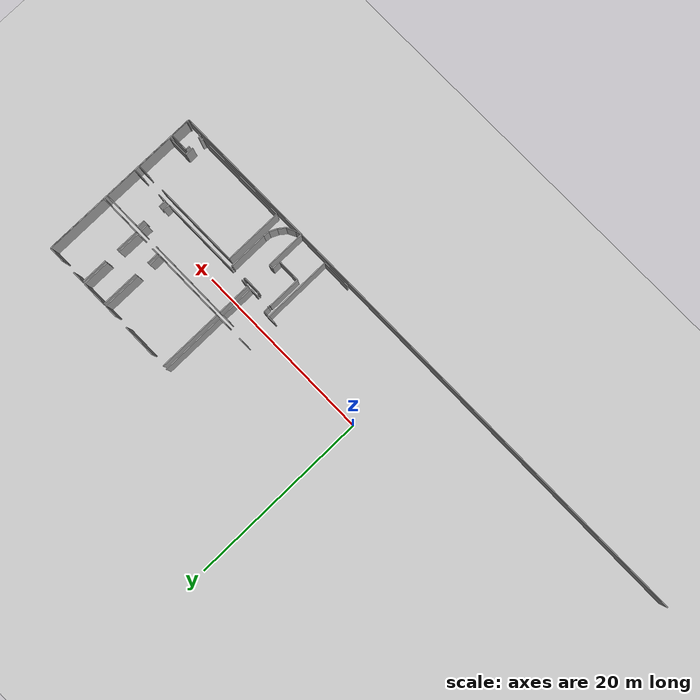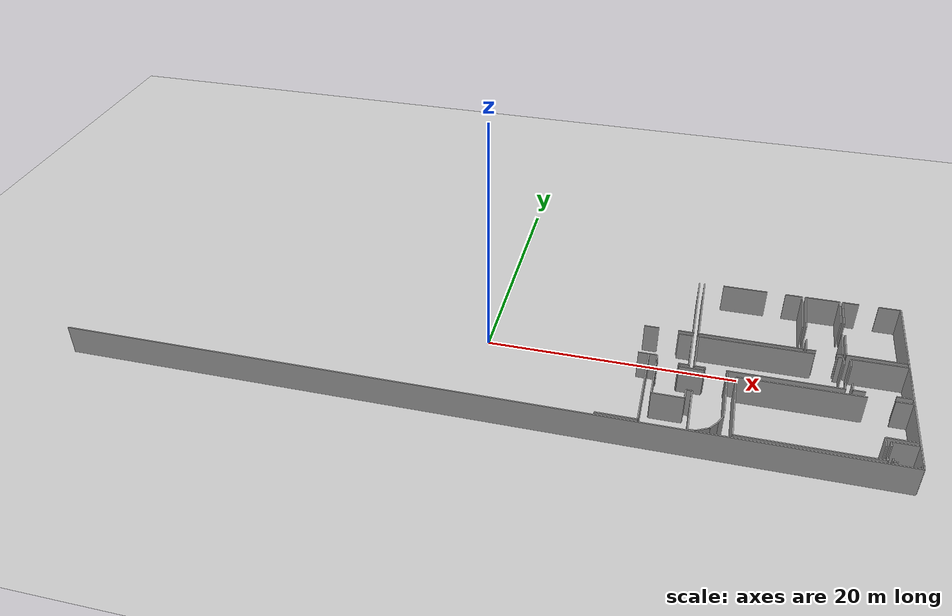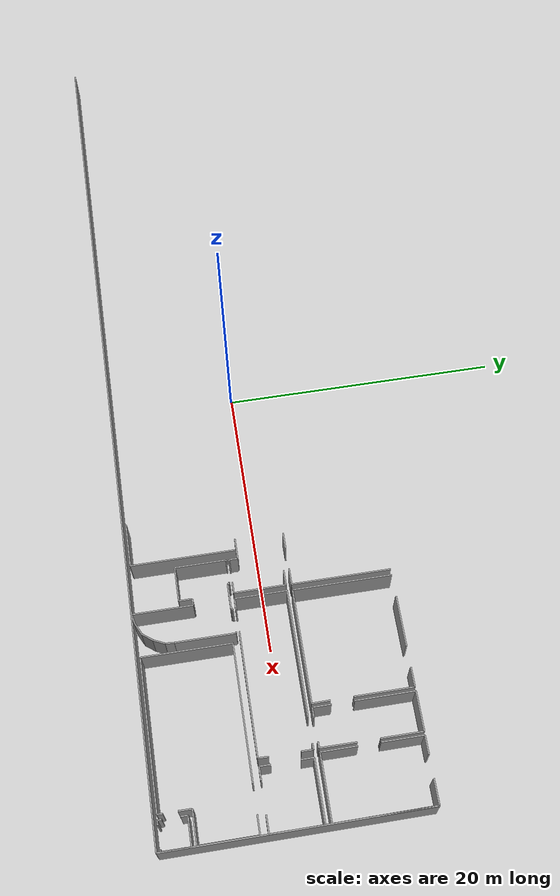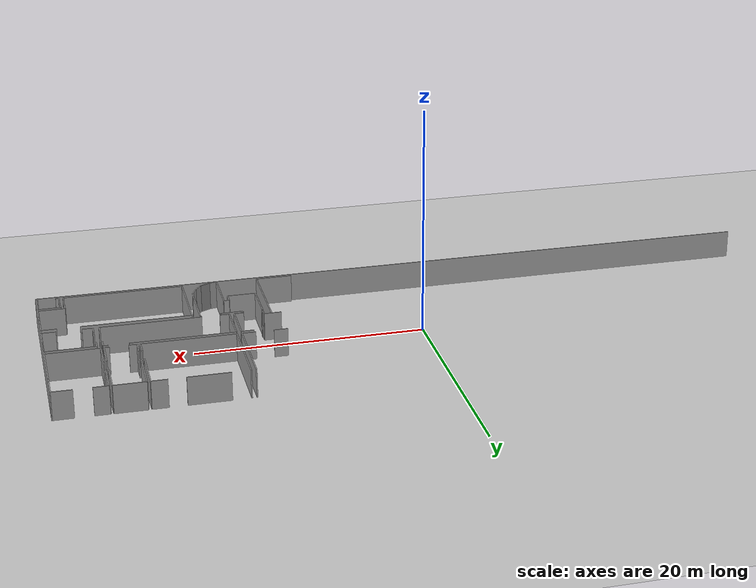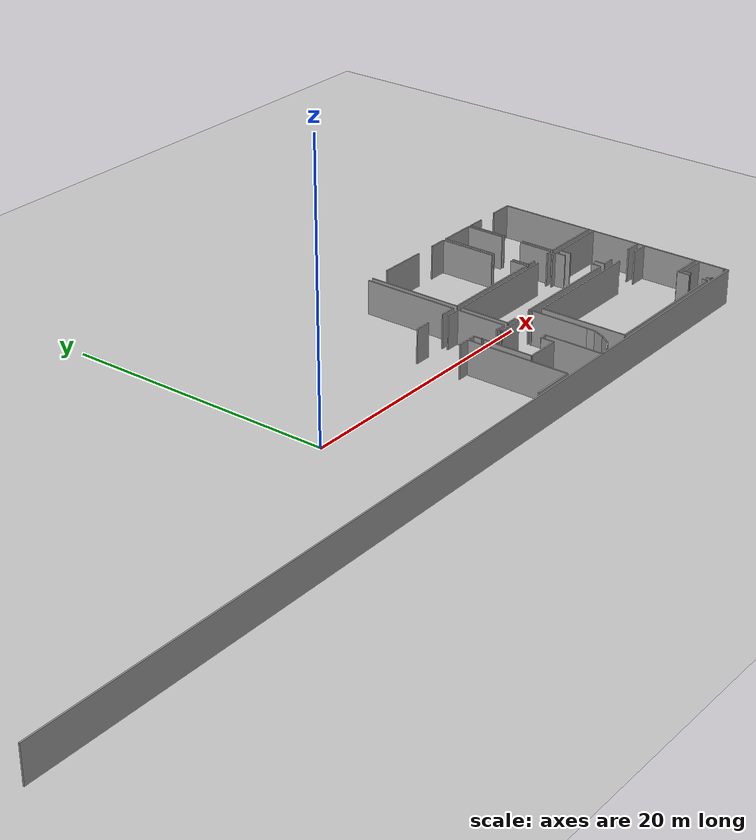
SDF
<sdf version="1.6">
 <world name="default">
  <model name="ground_plane">
   <static>1</static>
   <link name="link">
    <collision name="collision">
     <geometry><plane><normal>0 0 1</normal><size>100 100</size></plane></geometry>
     <surface><friction><ode><mu>100</mu><mu2>50</mu2></ode></friction></surface>
    </collision>
    <visual name="visual">
     <cast_shadows>0</cast_shadows>
     <geometry><plane><normal>0 0 1</normal><size>100 100</size></plane></geometry>
     <material>
      <script><uri>file://media/materials/scripts/gazebo.material</uri><name>Gazebo/Grey</name></script>
     </material>
    </visual>
   </link>
  </model>
  <model name="0510034868_A-40">
   <static>1</static>
   <link name="Wall_56">
    <collision name="Wall_56_Collision">
     <geometry><box><size>0.823649622066 0.1 2.5</size></box></geometry>
     <pose>0.411824811033 0 1.25 0 0 0</pose>
    </collision>
    <visual name="Wall_56_Visual">
     <pose>0.411824811033 0 1.25 0 0 0</pose>
     <geometry><box><size>0.823649622066 0.1 2.5</size></box></geometry>
     <material>
      <script><uri>file://media/materials/scripts/gazebo.material</uri><name>Gazebo/Grey</name></script>
      <ambient>1 1 1 1</ambient>
     </material>
    </visual>
    <pose>48.7089301694 -11.0882354808 0 0 0 3.14159265359</pose>
   </link>
   <link name="Wall_57">
    <collision name="Wall_57_Collision">
     <geometry><box><size>0.111317725158 0.1 2.5</size></box></geometry>
     <pose>0.0556588625791 0 1.25 0 0 0</pose>
    </collision>
    <visual name="Wall_57_Visual">
     <pose>0.0556588625791 0 1.25 0 0 0</pose>
     <geometry><box><size>0.111317725158 0.1 2.5</size></box></geometry>
     <material>
      <script><uri>file://media/materials/scripts/gazebo.material</uri><name>Gazebo/Grey</name></script>
      <ambient>1 1 1 1</ambient>
     </material>
    </visual>
    <pose>46.334448203 -11.0882354808 0 0 0 3.14159265359</pose>
   </link>
   <link name="Wall_58">
    <collision name="Wall_58_Collision">
     <geometry><box><size>0.614214905405 0.1 2.5</size></box></geometry>
     <pose>0.307107452703 0 1.25 0 0 0</pose>
    </collision>
    <visual name="Wall_58_Visual">
     <pose>0.307107452703 0 1.25 0 0 0</pose>
     <geometry><box><size>0.614214905405 0.1 2.5</size></box></geometry>
     <material>
      <script><uri>file://media/materials/scripts/gazebo.material</uri><name>Gazebo/Grey</name></script>
      <ambient>1 1 1 1</ambient>
     </material>
    </visual>
    <pose>46.2231304778 -11.0882354808 0 0 0 1.57079632679</pose>
   </link>
   <link name="Wall_59">
    <collision name="Wall_59_Collision">
     <geometry><box><size>1.48774806908 0.1 2.5</size></box></geometry>
     <pose>0.743874034538 0 1.25 0 0 0</pose>
    </collision>
    <visual name="Wall_59_Visual">
     <pose>0.743874034538 0 1.25 0 0 0</pose>
     <geometry><box><size>1.48774806908 0.1 2.5</size></box></geometry>
     <material>
      <script><uri>file://media/materials/scripts/gazebo.material</uri><name>Gazebo/Grey</name></script>
      <ambient>1 1 1 1</ambient>
     </material>
    </visual>
    <pose>46.2231304778 -10.4740205754 0 0 0 3.14159265359</pose>
   </link>
   <link name="Wall_80">
    <collision name="Wall_80_Collision">
     <geometry><box><size>1.08169857902 0.1 2.5</size></box></geometry>
     <pose>0.540849289509 0 1.25 0 0 0</pose>
    </collision>
    <visual name="Wall_80_Visual">
     <pose>0.540849289509 0 1.25 0 0 0</pose>
     <geometry><box><size>1.08169857902 0.1 2.5</size></box></geometry>
     <material>
      <script><uri>file://media/materials/scripts/gazebo.material</uri><name>Gazebo/Grey</name></script>
      <ambient>1 1 1 1</ambient>
     </material>
    </visual>
    <pose>47.6186003414 -7.42388952001 0 0 0 0.0</pose>
   </link>
   <link name="Wall_81">
    <collision name="Wall_81_Collision">
     <geometry><box><size>3.66435612607 0.1 2.5</size></box></geometry>
     <pose>1.83217806303 0 1.25 0 0 0</pose>
    </collision>
    <visual name="Wall_81_Visual">
     <pose>1.83217806303 0 1.25 0 0 0</pose>
     <geometry><box><size>3.66435612607 0.1 2.5</size></box></geometry>
     <material>
      <script><uri>file://media/materials/scripts/gazebo.material</uri><name>Gazebo/Grey</name></script>
      <ambient>1 1 1 1</ambient>
     </material>
    </visual>
    <pose>48.7002989205 -7.42388952001 0 0 0 -1.56844086335</pose>
   </link>
   <link name="Wall_119">
    <collision name="Wall_119_Collision">
     <geometry><box><size>1.18032329104 0.1 2.5</size></box></geometry>
     <pose>0.590161645522 0 1.25 0 0 0</pose>
    </collision>
    <visual name="Wall_119_Visual">
     <pose>0.590161645522 0 1.25 0 0 0</pose>
     <geometry><box><size>1.18032329104 0.1 2.5</size></box></geometry>
     <material>
      <script><uri>file://media/materials/scripts/gazebo.material</uri><name>Gazebo/Grey</name></script>
      <ambient>1 1 1 1</ambient>
     </material>
    </visual>
    <pose>48.7113418419 -7.03078690335 0 0 0 3.14159265359</pose>
   </link>
   <link name="Wall_120">
    <collision name="Wall_120_Collision">
     <geometry><box><size>1.17676924737 0.1 2.5</size></box></geometry>
     <pose>0.588384623684 0 1.25 0 0 0</pose>
    </collision>
    <visual name="Wall_120_Visual">
     <pose>0.588384623684 0 1.25 0 0 0</pose>
     <geometry><box><size>1.17676924737 0.1 2.5</size></box></geometry>
     <material>
      <script><uri>file://media/materials/scripts/gazebo.material</uri><name>Gazebo/Grey</name></script>
      <ambient>1 1 1 1</ambient>
     </material>
    </visual>
    <pose>45.9969409838 -7.03078690335 0 0 0 3.14159265359</pose>
   </link>
   <link name="Wall_123">
    <collision name="Wall_123_Collision">
     <geometry><box><size>7.02038173532 0.1 2.5</size></box></geometry>
     <pose>3.51019086766 0 1.25 0 0 0</pose>
    </collision>
    <visual name="Wall_123_Visual">
     <pose>3.51019086766 0 1.25 0 0 0</pose>
     <geometry><box><size>7.02038173532 0.1 2.5</size></box></geometry>
     <material>
      <script><uri>file://media/materials/scripts/gazebo.material</uri><name>Gazebo/Grey</name></script>
      <ambient>1 1 1 1</ambient>
     </material>
    </visual>
    <pose>48.7047414751 -0.0104082707674 0 0 0 -1.56985615459</pose>
   </link>
   <link name="Wall_159">
    <collision name="Wall_159_Collision">
     <geometry><box><size>3.14558251411 0.1 2.5</size></box></geometry>
     <pose>1.57279125705 0 1.25 0 0 0</pose>
    </collision>
    <visual name="Wall_159_Visual">
     <pose>1.57279125705 0 1.25 0 0 0</pose>
     <geometry><box><size>3.14558251411 0.1 2.5</size></box></geometry>
     <material>
      <script><uri>file://media/materials/scripts/gazebo.material</uri><name>Gazebo/Grey</name></script>
      <ambient>1 1 1 1</ambient>
     </material>
    </visual>
    <pose>45.5879721008 -17.9956462965 0 0 0 3.14159265359</pose>
   </link>
   <link name="Wall_163">
    <collision name="Wall_163_Collision">
     <geometry><box><size>7.46325901643 0.1 2.5</size></box></geometry>
     <pose>3.73162950822 0 1.25 0 0 0</pose>
    </collision>
    <visual name="Wall_163_Visual">
     <pose>3.73162950822 0 1.25 0 0 0</pose>
     <geometry><box><size>7.46325901643 0.1 2.5</size></box></geometry>
     <material>
      <script><uri>file://media/materials/scripts/gazebo.material</uri><name>Gazebo/Grey</name></script>
      <ambient>1 1 1 1</ambient>
     </material>
    </visual>
    <pose>45.5702018824 -10.5324084358 0 0 0 -1.56841529793</pose>
   </link>
   <link name="Wall_164">
    <collision name="Wall_164_Collision">
     <geometry><box><size>4.260029067 0.1 2.5</size></box></geometry>
     <pose>2.1300145335 0 1.25 0 0 0</pose>
    </collision>
    <visual name="Wall_164_Visual">
     <pose>2.1300145335 0 1.25 0 0 0</pose>
     <geometry><box><size>4.260029067 0.1 2.5</size></box></geometry>
     <material>
      <script><uri>file://media/materials/scripts/gazebo.material</uri><name>Gazebo/Grey</name></script>
      <ambient>1 1 1 1</ambient>
     </material>
    </visual>
    <pose>49.1522971181 -18.2497604194 0 0 0 1.57079632679</pose>
   </link>
   <link name="Wall_165">
    <collision name="Wall_165_Collision">
     <geometry><box><size>0.467991394137 0.1 2.5</size></box></geometry>
     <pose>0.233995697069 0 1.25 0 0 0</pose>
    </collision>
    <visual name="Wall_165_Visual">
     <pose>0.233995697069 0 1.25 0 0 0</pose>
     <geometry><box><size>0.467991394137 0.1 2.5</size></box></geometry>
     <material>
      <script><uri>file://media/materials/scripts/gazebo.material</uri><name>Gazebo/Grey</name></script>
      <ambient>1 1 1 1</ambient>
     </material>
    </visual>
    <pose>49.1522971181 -13.9897313524 0 0 0 3.14159265359</pose>
   </link>
   <link name="Wall_166">
    <collision name="Wall_166_Collision">
     <geometry><box><size>0.943090875628 0.1 2.5</size></box></geometry>
     <pose>0.471545437814 0 1.25 0 0 0</pose>
    </collision>
    <visual name="Wall_166_Visual">
     <pose>0.471545437814 0 1.25 0 0 0</pose>
     <geometry><box><size>0.943090875628 0.1 2.5</size></box></geometry>
     <material>
      <script><uri>file://media/materials/scripts/gazebo.material</uri><name>Gazebo/Grey</name></script>
      <ambient>1 1 1 1</ambient>
     </material>
    </visual>
    <pose>48.6843057239 -13.9897313524 0 0 0 -1.57079632679</pose>
   </link>
   <link name="Wall_167">
    <collision name="Wall_167_Collision">
     <geometry><box><size>2.47031421554 0.1 2.5</size></box></geometry>
     <pose>1.23515710777 0 1.25 0 0 0</pose>
    </collision>
    <visual name="Wall_167_Visual">
     <pose>1.23515710777 0 1.25 0 0 0</pose>
     <geometry><box><size>2.47031421554 0.1 2.5</size></box></geometry>
     <material>
      <script><uri>file://media/materials/scripts/gazebo.material</uri><name>Gazebo/Grey</name></script>
      <ambient>1 1 1 1</ambient>
     </material>
    </visual>
    <pose>48.6843057239 -14.932822228 0 0 0 3.14159265359</pose>
   </link>
   <link name="Wall_168">
    <collision name="Wall_168_Collision">
     <geometry><box><size>3.63210570741 0.1 2.5</size></box></geometry>
     <pose>1.81605285371 0 1.25 0 0 0</pose>
    </collision>
    <visual name="Wall_168_Visual">
     <pose>1.81605285371 0 1.25 0 0 0</pose>
     <geometry><box><size>3.63210570741 0.1 2.5</size></box></geometry>
     <material>
      <script><uri>file://media/materials/scripts/gazebo.material</uri><name>Gazebo/Grey</name></script>
      <ambient>1 1 1 1</ambient>
     </material>
    </visual>
    <pose>46.2139915084 -14.932822228 0 0 0 1.57079632679</pose>
   </link>
   <link name="Wall_169">
    <collision name="Wall_169_Collision">
     <geometry><box><size>0.109921493714 0.1 2.5</size></box></geometry>
     <pose>0.0549607468569 0 1.25 0 0 0</pose>
    </collision>
    <visual name="Wall_169_Visual">
     <pose>0.0549607468569 0 1.25 0 0 0</pose>
     <geometry><box><size>0.109921493714 0.1 2.5</size></box></geometry>
     <material>
      <script><uri>file://media/materials/scripts/gazebo.material</uri><name>Gazebo/Grey</name></script>
      <ambient>1 1 1 1</ambient>
     </material>
    </visual>
    <pose>46.2139915084 -11.3007165206 0 0 0 0.0</pose>
   </link>
   <link name="Wall_170">
    <collision name="Wall_170_Collision">
     <geometry><box><size>0.109667633451 0.1 2.5</size></box></geometry>
     <pose>0.0548338167256 0 1.25 0 0 0</pose>
    </collision>
    <visual name="Wall_170_Visual">
     <pose>0.0548338167256 0 1.25 0 0 0</pose>
     <geometry><box><size>0.109667633451 0.1 2.5</size></box></geometry>
     <material>
      <script><uri>file://media/materials/scripts/gazebo.material</uri><name>Gazebo/Grey</name></script>
      <ambient>1 1 1 1</ambient>
     </material>
    </visual>
    <pose>47.8605291717 -11.3007165206 0 0 0 0.0</pose>
   </link>
   <link name="Wall_171">
    <collision name="Wall_171_Collision">
     <geometry><box><size>0.133657428269 0.1 2.5</size></box></geometry>
     <pose>0.0668287141343 0 1.25 0 0 0</pose>
    </collision>
    <visual name="Wall_171_Visual">
     <pose>0.0668287141343 0 1.25 0 0 0</pose>
     <geometry><box><size>0.133657428269 0.1 2.5</size></box></geometry>
     <material>
      <script><uri>file://media/materials/scripts/gazebo.material</uri><name>Gazebo/Grey</name></script>
      <ambient>1 1 1 1</ambient>
     </material>
    </visual>
    <pose>47.9701968052 -11.3007165206 0 0 0 -1.57079632679</pose>
   </link>
   <link name="Wall_172">
    <collision name="Wall_172_Collision">
     <geometry><box><size>1.87691585167 0.1 2.5</size></box></geometry>
     <pose>0.938457925835 0 1.25 0 0 0</pose>
    </collision>
    <visual name="Wall_172_Visual">
     <pose>0.938457925835 0 1.25 0 0 0</pose>
     <geometry><box><size>1.87691585167 0.1 2.5</size></box></geometry>
     <material>
      <script><uri>file://media/materials/scripts/gazebo.material</uri><name>Gazebo/Grey</name></script>
      <ambient>1 1 1 1</ambient>
     </material>
    </visual>
    <pose>47.9701968052 -11.4343739489 0 0 0 0.0</pose>
   </link>
   <link name="Wall_173">
    <collision name="Wall_173_Collision">
     <geometry><box><size>0.112587026471 0.1 2.5</size></box></geometry>
     <pose>0.0562935132356 0 1.25 0 0 0</pose>
    </collision>
    <visual name="Wall_173_Visual">
     <pose>0.0562935132356 0 1.25 0 0 0</pose>
     <geometry><box><size>0.112587026471 0.1 2.5</size></box></geometry>
     <material>
      <script><uri>file://media/materials/scripts/gazebo.material</uri><name>Gazebo/Grey</name></script>
      <ambient>1 1 1 1</ambient>
     </material>
    </visual>
    <pose>49.8471126568 -11.4343739489 0 0 0 1.57079632679</pose>
   </link>
   <link name="Wall_174">
    <collision name="Wall_174_Collision">
     <geometry><box><size>0.0830123058762 0.1 2.5</size></box></geometry>
     <pose>0.0415061529381 0 1.25 0 0 0</pose>
    </collision>
    <visual name="Wall_174_Visual">
     <pose>0.0415061529381 0 1.25 0 0 0</pose>
     <geometry><box><size>0.0830123058762 0.1 2.5</size></box></geometry>
     <material>
      <script><uri>file://media/materials/scripts/gazebo.material</uri><name>Gazebo/Grey</name></script>
      <ambient>1 1 1 1</ambient>
     </material>
    </visual>
    <pose>49.8471126568 -11.3217869224 0 0 0 0.0</pose>
   </link>
   <link name="Wall_175">
    <collision name="Wall_175_Collision">
     <geometry><box><size>0.115252559229 0.1 2.5</size></box></geometry>
     <pose>0.0576262796144 0 1.25 0 0 0</pose>
    </collision>
    <visual name="Wall_175_Visual">
     <pose>0.0576262796144 0 1.25 0 0 0</pose>
     <geometry><box><size>0.115252559229 0.1 2.5</size></box></geometry>
     <material>
      <script><uri>file://media/materials/scripts/gazebo.material</uri><name>Gazebo/Grey</name></script>
      <ambient>1 1 1 1</ambient>
     </material>
    </visual>
    <pose>51.4784187044 -11.3217869224 0 0 0 0.0</pose>
   </link>
   <link name="Wall_176">
    <collision name="Wall_176_Collision">
     <geometry><box><size>4.24885921544 0.1 2.5</size></box></geometry>
     <pose>2.12442960772 0 1.25 0 0 0</pose>
    </collision>
    <visual name="Wall_176_Visual">
     <pose>2.12442960772 0 1.25 0 0 0</pose>
     <geometry><box><size>4.24885921544 0.1 2.5</size></box></geometry>
     <material>
      <script><uri>file://media/materials/scripts/gazebo.material</uri><name>Gazebo/Grey</name></script>
      <ambient>1 1 1 1</ambient>
     </material>
    </visual>
    <pose>51.5936712637 -11.3217869224 0 0 0 -1.57079632679</pose>
   </link>
   <link name="Wall_177">
    <collision name="Wall_177_Collision">
     <geometry><box><size>0.625623320526 0.1 2.5</size></box></geometry>
     <pose>0.312811660263 0 1.25 0 0 0</pose>
    </collision>
    <visual name="Wall_177_Visual">
     <pose>0.312811660263 0 1.25 0 0 0</pose>
     <geometry><box><size>0.625623320526 0.1 2.5</size></box></geometry>
     <material>
      <script><uri>file://media/materials/scripts/gazebo.material</uri><name>Gazebo/Grey</name></script>
      <ambient>1 1 1 1</ambient>
     </material>
    </visual>
    <pose>51.5936712637 -15.5706461378 0 0 0 -1.64023909296</pose>
   </link>
   <link name="Wall_178">
    <collision name="Wall_178_Collision">
     <geometry><box><size>0.876994264217 0.1 2.5</size></box></geometry>
     <pose>0.438497132108 0 1.25 0 0 0</pose>
    </collision>
    <visual name="Wall_178_Visual">
     <pose>0.438497132108 0 1.25 0 0 0</pose>
     <geometry><box><size>0.876994264217 0.1 2.5</size></box></geometry>
     <material>
      <script><uri>file://media/materials/scripts/gazebo.material</uri><name>Gazebo/Grey</name></script>
      <ambient>1 1 1 1</ambient>
     </material>
    </visual>
    <pose>51.5502611587 -16.1947615935 0 0 0 -1.99741184172</pose>
   </link>
   <link name="Wall_179">
    <collision name="Wall_179_Collision">
     <geometry><box><size>0.875177686634 0.1 2.5</size></box></geometry>
     <pose>0.437588843317 0 1.25 0 0 0</pose>
    </collision>
    <visual name="Wall_179_Visual">
     <pose>0.437588843317 0 1.25 0 0 0</pose>
     <geometry><box><size>0.875177686634 0.1 2.5</size></box></geometry>
     <material>
      <script><uri>file://media/materials/scripts/gazebo.material</uri><name>Gazebo/Grey</name></script>
      <ambient>1 1 1 1</ambient>
     </material>
    </visual>
    <pose>51.1873679133 -16.9931521194 0 0 0 -2.22102704334</pose>
   </link>
   <link name="Wall_180">
    <collision name="Wall_180_Collision">
     <geometry><box><size>0.963986440215 0.1 2.5</size></box></geometry>
     <pose>0.481993220107 0 1.25 0 0 0</pose>
    </collision>
    <visual name="Wall_180_Visual">
     <pose>0.481993220107 0 1.25 0 0 0</pose>
     <geometry><box><size>0.963986440215 0.1 2.5</size></box></geometry>
     <material>
      <script><uri>file://media/materials/scripts/gazebo.material</uri><name>Gazebo/Grey</name></script>
      <ambient>1 1 1 1</ambient>
     </material>
    </visual>
    <pose>50.6575615452 -17.68974468 0 0 0 -2.68124264187</pose>
   </link>
   <link name="Wall_181">
    <collision name="Wall_181_Collision">
     <geometry><box><size>0.655019360749 0.1 2.5</size></box></geometry>
     <pose>0.327509680375 0 1.25 0 0 0</pose>
    </collision>
    <visual name="Wall_181_Visual">
     <pose>0.327509680375 0 1.25 0 0 0</pose>
     <geometry><box><size>0.655019360749 0.1 2.5</size></box></geometry>
     <material>
      <script><uri>file://media/materials/scripts/gazebo.material</uri><name>Gazebo/Grey</name></script>
      <ambient>1 1 1 1</ambient>
     </material>
    </visual>
    <pose>49.7939289318 -18.1180069431 0 0 0 -2.93906659492</pose>
   </link>
   <link name="Wall_182">
    <collision name="Wall_182_Collision">
     <geometry><box><size>8.67097806013 0.1 2.5</size></box></geometry>
     <pose>4.33548903006 0 1.25 0 0 0</pose>
    </collision>
    <visual name="Wall_182_Visual">
     <pose>4.33548903006 0 1.25 0 0 0</pose>
     <geometry><box><size>8.67097806013 0.1 2.5</size></box></geometry>
     <material>
      <script><uri>file://media/materials/scripts/gazebo.material</uri><name>Gazebo/Grey</name></script>
      <ambient>1 1 1 1</ambient>
     </material>
    </visual>
    <pose>60.1704671663 -11.1004207734 0 0 0 3.14159265359</pose>
   </link>
   <link name="Wall_183">
    <collision name="Wall_183_Collision">
     <geometry><box><size>0.834946403752 0.1 2.5</size></box></geometry>
     <pose>0.417473201876 0 1.25 0 0 0</pose>
    </collision>
    <visual name="Wall_183_Visual">
     <pose>0.417473201876 0 1.25 0 0 0</pose>
     <geometry><box><size>0.834946403752 0.1 2.5</size></box></geometry>
     <material>
      <script><uri>file://media/materials/scripts/gazebo.material</uri><name>Gazebo/Grey</name></script>
      <ambient>1 1 1 1</ambient>
     </material>
    </visual>
    <pose>49.9566533602 -11.1004207734 0 0 0 3.14159265359</pose>
   </link>
   <link name="Wall_184">
    <collision name="Wall_184_Collision">
     <geometry><box><size>3.68808189532 0.1 2.5</size></box></geometry>
     <pose>1.84404094766 0 1.25 0 0 0</pose>
    </collision>
    <visual name="Wall_184_Visual">
     <pose>1.84404094766 0 1.25 0 0 0</pose>
     <geometry><box><size>3.68808189532 0.1 2.5</size></box></geometry>
     <material>
      <script><uri>file://media/materials/scripts/gazebo.material</uri><name>Gazebo/Grey</name></script>
      <ambient>1 1 1 1</ambient>
     </material>
    </visual>
    <pose>49.1217069564 -11.1004207734 0 0 0 1.57079632679</pose>
   </link>
   <link name="Wall_185">
    <collision name="Wall_185_Collision">
     <geometry><box><size>8.91620707382 0.1 2.5</size></box></geometry>
     <pose>4.45810353691 0 1.25 0 0 0</pose>
    </collision>
    <visual name="Wall_185_Visual">
     <pose>4.45810353691 0 1.25 0 0 0</pose>
     <geometry><box><size>8.91620707382 0.1 2.5</size></box></geometry>
     <material>
      <script><uri>file://media/materials/scripts/gazebo.material</uri><name>Gazebo/Grey</name></script>
      <ambient>1 1 1 1</ambient>
     </material>
    </visual>
    <pose>49.1217069564 -7.41233887806 0 0 0 0.0</pose>
   </link>
   <link name="Wall_186">
    <collision name="Wall_186_Collision">
     <geometry><box><size>0.408461162553 0.1 2.5</size></box></geometry>
     <pose>0.204230581277 0 1.25 0 0 0</pose>
    </collision>
    <visual name="Wall_186_Visual">
     <pose>0.204230581277 0 1.25 0 0 0</pose>
     <geometry><box><size>0.408461162553 0.1 2.5</size></box></geometry>
     <material>
      <script><uri>file://media/materials/scripts/gazebo.material</uri><name>Gazebo/Grey</name></script>
      <ambient>1 1 1 1</ambient>
     </material>
    </visual>
    <pose>59.7818071043 -7.41233887806 0 0 0 0.0</pose>
   </link>
   <link name="Wall_187">
    <collision name="Wall_187_Collision">
     <geometry><box><size>0.814002932086 0.1 2.5</size></box></geometry>
     <pose>0.407001466043 0 1.25 0 0 0</pose>
    </collision>
    <visual name="Wall_187_Visual">
     <pose>0.407001466043 0 1.25 0 0 0</pose>
     <geometry><box><size>0.814002932086 0.1 2.5</size></box></geometry>
     <material>
      <script><uri>file://media/materials/scripts/gazebo.material</uri><name>Gazebo/Grey</name></script>
      <ambient>1 1 1 1</ambient>
     </material>
    </visual>
    <pose>60.1902682668 -7.41233887806 0 0 0 -1.57079632679</pose>
   </link>
   <link name="Wall_188">
    <collision name="Wall_188_Collision">
     <geometry><box><size>0.729989928416 0.1 2.5</size></box></geometry>
     <pose>0.364994964208 0 1.25 0 0 0</pose>
    </collision>
    <visual name="Wall_188_Visual">
     <pose>0.364994964208 0 1.25 0 0 0</pose>
     <geometry><box><size>0.729989928416 0.1 2.5</size></box></geometry>
     <material>
      <script><uri>file://media/materials/scripts/gazebo.material</uri><name>Gazebo/Grey</name></script>
      <ambient>1 1 1 1</ambient>
     </material>
    </visual>
    <pose>60.1902682668 -10.3706994485 0 0 0 -1.59792482365</pose>
   </link>
   <link name="Wall_189">
    <collision name="Wall_189_Collision">
     <geometry><box><size>8.05739780538 0.1 2.5</size></box></geometry>
     <pose>4.02869890269 0 1.25 0 0 0</pose>
    </collision>
    <visual name="Wall_189_Visual">
     <pose>4.02869890269 0 1.25 0 0 0</pose>
     <geometry><box><size>8.05739780538 0.1 2.5</size></box></geometry>
     <material>
      <script><uri>file://media/materials/scripts/gazebo.material</uri><name>Gazebo/Grey</name></script>
      <ambient>1 1 1 1</ambient>
     </material>
    </visual>
    <pose>57.1881168011 -7.03078690335 0 0 0 3.14159265359</pose>
   </link>
   <link name="Wall_190">
    <collision name="Wall_190_Collision">
     <geometry><box><size>7.01974398193 0.1 2.5</size></box></geometry>
     <pose>3.50987199096 0 1.25 0 0 0</pose>
    </collision>
    <visual name="Wall_190_Visual">
     <pose>3.50987199096 0 1.25 0 0 0</pose>
     <geometry><box><size>7.01974398193 0.1 2.5</size></box></geometry>
     <material>
      <script><uri>file://media/materials/scripts/gazebo.material</uri><name>Gazebo/Grey</name></script>
      <ambient>1 1 1 1</ambient>
     </material>
    </visual>
    <pose>49.1307189957 -7.03078690335 0 0 0 1.57079632679</pose>
   </link>
   <link name="Wall_191">
    <collision name="Wall_191_Collision">
     <geometry><box><size>3.61636637113 0.1 2.5</size></box></geometry>
     <pose>1.80818318557 0 1.25 0 0 0</pose>
    </collision>
    <visual name="Wall_191_Visual">
     <pose>1.80818318557 0 1.25 0 0 0</pose>
     <geometry><box><size>3.61636637113 0.1 2.5</size></box></geometry>
     <material>
      <script><uri>file://media/materials/scripts/gazebo.material</uri><name>Gazebo/Grey</name></script>
      <ambient>1 1 1 1</ambient>
     </material>
    </visual>
    <pose>50.704652624 -0.0110429214239 0 0 0 0.0</pose>
   </link>
   <link name="Wall_192">
    <collision name="Wall_192_Collision">
     <geometry><box><size>1.37186085919 0.1 2.5</size></box></geometry>
     <pose>0.685930429595 0 1.25 0 0 0</pose>
    </collision>
    <visual name="Wall_192_Visual">
     <pose>0.685930429595 0 1.25 0 0 0</pose>
     <geometry><box><size>1.37186085919 0.1 2.5</size></box></geometry>
     <material>
      <script><uri>file://media/materials/scripts/gazebo.material</uri><name>Gazebo/Grey</name></script>
      <ambient>1 1 1 1</ambient>
     </material>
    </visual>
    <pose>55.7970894921 -0.0110429214239 0 0 0 0.0</pose>
   </link>
   <link name="Wall_193">
    <collision name="Wall_193_Collision">
     <geometry><box><size>4.16686235062 0.1 2.5</size></box></geometry>
     <pose>2.08343117531 0 1.25 0 0 0</pose>
    </collision>
    <visual name="Wall_193_Visual">
     <pose>2.08343117531 0 1.25 0 0 0</pose>
     <geometry><box><size>4.16686235062 0.1 2.5</size></box></geometry>
     <material>
      <script><uri>file://media/materials/scripts/gazebo.material</uri><name>Gazebo/Grey</name></script>
      <ambient>1 1 1 1</ambient>
     </material>
    </visual>
    <pose>57.1689503513 -0.0110429214239 0 0 0 -1.57079632679</pose>
   </link>
   <link name="Wall_194">
    <collision name="Wall_194_Collision">
     <geometry><box><size>1.27033442125 0.1 2.5</size></box></geometry>
     <pose>0.635167210627 0 1.25 0 0 0</pose>
    </collision>
    <visual name="Wall_194_Visual">
     <pose>0.635167210627 0 1.25 0 0 0</pose>
     <geometry><box><size>1.27033442125 0.1 2.5</size></box></geometry>
     <material>
      <script><uri>file://media/materials/scripts/gazebo.material</uri><name>Gazebo/Grey</name></script>
      <ambient>1 1 1 1</ambient>
     </material>
    </visual>
    <pose>57.1689503513 -5.76059707934 0 0 0 -1.55570803449</pose>
   </link>
   <link name="Wall_195">
    <collision name="Wall_195_Collision">
     <geometry><box><size>0.442478437744 0.1 2.5</size></box></geometry>
     <pose>0.221239218872 0 1.25 0 0 0</pose>
    </collision>
    <visual name="Wall_195_Visual">
     <pose>0.221239218872 0 1.25 0 0 0</pose>
     <geometry><box><size>0.442478437744 0.1 2.5</size></box></geometry>
     <material>
      <script><uri>file://media/materials/scripts/gazebo.material</uri><name>Gazebo/Grey</name></script>
      <ambient>1 1 1 1</ambient>
     </material>
    </visual>
    <pose>60.1571395026 -7.03078690335 0 0 0 3.14159265359</pose>
   </link>
   <link name="Wall_196">
    <collision name="Wall_196_Collision">
     <geometry><box><size>0.695323259312 0.1 2.5</size></box></geometry>
     <pose>0.347661629656 0 1.25 0 0 0</pose>
    </collision>
    <visual name="Wall_196_Visual">
     <pose>0.347661629656 0 1.25 0 0 0</pose>
     <geometry><box><size>0.695323259312 0.1 2.5</size></box></geometry>
     <material>
      <script><uri>file://media/materials/scripts/gazebo.material</uri><name>Gazebo/Grey</name></script>
      <ambient>1 1 1 1</ambient>
     </material>
    </visual>
    <pose>58.137300323 -7.03078690335 0 0 0 3.14159265359</pose>
   </link>
   <link name="Wall_197">
    <collision name="Wall_197_Collision">
     <geometry><box><size>1.28681767121 0.1 2.5</size></box></geometry>
     <pose>0.643408835606 0 1.25 0 0 0</pose>
    </collision>
    <visual name="Wall_197_Visual">
     <pose>0.643408835606 0 1.25 0 0 0</pose>
     <geometry><box><size>1.28681767121 0.1 2.5</size></box></geometry>
     <material>
      <script><uri>file://media/materials/scripts/gazebo.material</uri><name>Gazebo/Grey</name></script>
      <ambient>1 1 1 1</ambient>
     </material>
    </visual>
    <pose>57.4419770637 -7.03078690335 0 0 0 1.57079632679</pose>
   </link>
   <link name="Wall_198">
    <collision name="Wall_198_Collision">
     <geometry><box><size>4.16102356458 0.1 2.5</size></box></geometry>
     <pose>2.08051178229 0 1.25 0 0 0</pose>
    </collision>
    <visual name="Wall_198_Visual">
     <pose>2.08051178229 0 1.25 0 0 0</pose>
     <geometry><box><size>4.16102356458 0.1 2.5</size></box></geometry>
     <material>
      <script><uri>file://media/materials/scripts/gazebo.material</uri><name>Gazebo/Grey</name></script>
      <ambient>1 1 1 1</ambient>
     </material>
    </visual>
    <pose>57.4419770637 -4.16102356458 0 0 0 1.57079632679</pose>
   </link>
   <link name="Wall_199">
    <collision name="Wall_199_Collision">
     <geometry><box><size>2.73458274893 0.1 2.5</size></box></geometry>
     <pose>1.36729137446 0 1.25 0 0 0</pose>
    </collision>
    <visual name="Wall_199_Visual">
     <pose>1.36729137446 0 1.25 0 0 0</pose>
     <geometry><box><size>2.73458274893 0.1 2.5</size></box></geometry>
     <material>
      <script><uri>file://media/materials/scripts/gazebo.material</uri><name>Gazebo/Grey</name></script>
      <ambient>1 1 1 1</ambient>
     </material>
    </visual>
    <pose>57.4419770637 -0.0 0 0 0 0.0</pose>
   </link>
   <link name="Wall_200">
    <collision name="Wall_200_Collision">
     <geometry><box><size>2.93145138259 0.1 2.5</size></box></geometry>
     <pose>1.46572569129 0 1.25 0 0 0</pose>
    </collision>
    <visual name="Wall_200_Visual">
     <pose>1.46572569129 0 1.25 0 0 0</pose>
     <geometry><box><size>2.93145138259 0.1 2.5</size></box></geometry>
     <material>
      <script><uri>file://media/materials/scripts/gazebo.material</uri><name>Gazebo/Grey</name></script>
      <ambient>1 1 1 1</ambient>
     </material>
    </visual>
    <pose>60.1765598127 -0.0 0 0 0 -1.57079632679</pose>
   </link>
   <link name="Wall_201">
    <collision name="Wall_201_Collision">
     <geometry><box><size>2.53956539271 0.1 2.5</size></box></geometry>
     <pose>1.26978269636 0 1.25 0 0 0</pose>
    </collision>
    <visual name="Wall_201_Visual">
     <pose>1.26978269636 0 1.25 0 0 0</pose>
     <geometry><box><size>2.53956539271 0.1 2.5</size></box></geometry>
     <material>
      <script><uri>file://media/materials/scripts/gazebo.material</uri><name>Gazebo/Grey</name></script>
      <ambient>1 1 1 1</ambient>
     </material>
    </visual>
    <pose>60.1765598127 -4.49129576625 0 0 0 -1.57844350116</pose>
   </link>
   <link name="Wall_202">
    <collision name="Wall_202_Collision">
     <geometry><box><size>4.58763573591 0.1 2.5</size></box></geometry>
     <pose>2.29381786795 0 1.25 0 0 0</pose>
    </collision>
    <visual name="Wall_202_Visual">
     <pose>2.29381786795 0 1.25 0 0 0</pose>
     <geometry><box><size>4.58763573591 0.1 2.5</size></box></geometry>
     <material>
      <script><uri>file://media/materials/scripts/gazebo.material</uri><name>Gazebo/Grey</name></script>
      <ambient>1 1 1 1</ambient>
     </material>
    </visual>
    <pose>65.0058705186 -7.01644379851 0 0 0 3.14159265359</pose>
   </link>
   <link name="Wall_203">
    <collision name="Wall_203_Collision">
     <geometry><box><size>2.52184784885 0.1 2.5</size></box></geometry>
     <pose>1.26092392443 0 1.25 0 0 0</pose>
    </collision>
    <visual name="Wall_203_Visual">
     <pose>1.26092392443 0 1.25 0 0 0</pose>
     <geometry><box><size>2.52184784885 0.1 2.5</size></box></geometry>
     <material>
      <script><uri>file://media/materials/scripts/gazebo.material</uri><name>Gazebo/Grey</name></script>
      <ambient>1 1 1 1</ambient>
     </material>
    </visual>
    <pose>60.4182347827 -7.01644379851 0 0 0 1.57079632679</pose>
   </link>
   <link name="Wall_204">
    <collision name="Wall_204_Collision">
     <geometry><box><size>2.9428750944 0.1 2.5</size></box></geometry>
     <pose>1.4714375472 0 1.25 0 0 0</pose>
    </collision>
    <visual name="Wall_204_Visual">
     <pose>1.4714375472 0 1.25 0 0 0</pose>
     <geometry><box><size>2.9428750944 0.1 2.5</size></box></geometry>
     <material>
      <script><uri>file://media/materials/scripts/gazebo.material</uri><name>Gazebo/Grey</name></script>
      <ambient>1 1 1 1</ambient>
     </material>
    </visual>
    <pose>60.4182347827 -2.95531424727 0 0 0 1.57079632679</pose>
   </link>
   <link name="Wall_205">
    <collision name="Wall_205_Collision">
     <geometry><box><size>1.28605609043 0.1 2.5</size></box></geometry>
     <pose>0.643028045213 0 1.25 0 0 0</pose>
    </collision>
    <visual name="Wall_205_Visual">
     <pose>0.643028045213 0 1.25 0 0 0</pose>
     <geometry><box><size>1.28605609043 0.1 2.5</size></box></geometry>
     <material>
      <script><uri>file://media/materials/scripts/gazebo.material</uri><name>Gazebo/Grey</name></script>
      <ambient>1 1 1 1</ambient>
     </material>
    </visual>
    <pose>60.4182347827 -0.0124391528683 0 0 0 0.0</pose>
   </link>
   <link name="Wall_206">
    <collision name="Wall_206_Collision">
     <geometry><box><size>1.72916917883 0.1 2.5</size></box></geometry>
     <pose>0.864584589413 0 1.25 0 0 0</pose>
    </collision>
    <visual name="Wall_206_Visual">
     <pose>0.864584589413 0 1.25 0 0 0</pose>
     <geometry><box><size>1.72916917883 0.1 2.5</size></box></geometry>
     <material>
      <script><uri>file://media/materials/scripts/gazebo.material</uri><name>Gazebo/Grey</name></script>
      <ambient>1 1 1 1</ambient>
     </material>
    </visual>
    <pose>63.250807593 -0.0124391528683 0 0 0 0.0</pose>
   </link>
   <link name="Wall_207">
    <collision name="Wall_207_Collision">
     <geometry><box><size>7.00405250996 0.1 2.5</size></box></geometry>
     <pose>3.50202625498 0 1.25 0 0 0</pose>
    </collision>
    <visual name="Wall_207_Visual">
     <pose>3.50202625498 0 1.25 0 0 0</pose>
     <geometry><box><size>7.00405250996 0.1 2.5</size></box></geometry>
     <material>
      <script><uri>file://media/materials/scripts/gazebo.material</uri><name>Gazebo/Grey</name></script>
      <ambient>1 1 1 1</ambient>
     </material>
    </visual>
    <pose>64.9799767718 -0.0124391528683 0 0 0 -1.56709935197</pose>
   </link>
   <link name="Wall_208">
    <collision name="Wall_208_Collision">
     <geometry><box><size>1.2251296274 0.1 2.5</size></box></geometry>
     <pose>0.612564813698 0 1.25 0 0 0</pose>
    </collision>
    <visual name="Wall_208_Visual">
     <pose>0.612564813698 0 1.25 0 0 0</pose>
     <geometry><box><size>1.2251296274 0.1 2.5</size></box></geometry>
     <material>
      <script><uri>file://media/materials/scripts/gazebo.material</uri><name>Gazebo/Grey</name></script>
      <ambient>1 1 1 1</ambient>
     </material>
    </visual>
    <pose>65.0025703352 -11.0815081838 0 0 0 3.14159265359</pose>
   </link>
   <link name="Wall_209">
    <collision name="Wall_209_Collision">
     <geometry><box><size>0.905011836235 0.1 2.5</size></box></geometry>
     <pose>0.452505918117 0 1.25 0 0 0</pose>
    </collision>
    <visual name="Wall_209_Visual">
     <pose>0.452505918117 0 1.25 0 0 0</pose>
     <geometry><box><size>0.905011836235 0.1 2.5</size></box></geometry>
     <material>
      <script><uri>file://media/materials/scripts/gazebo.material</uri><name>Gazebo/Grey</name></script>
      <ambient>1 1 1 1</ambient>
     </material>
    </visual>
    <pose>61.6140435497 -11.0815081838 0 0 0 3.14159265359</pose>
   </link>
   <link name="Wall_210">
    <collision name="Wall_210_Collision">
     <geometry><box><size>0.772623709279 0.1 2.5</size></box></geometry>
     <pose>0.38631185464 0 1.25 0 0 0</pose>
    </collision>
    <visual name="Wall_210_Visual">
     <pose>0.38631185464 0 1.25 0 0 0</pose>
     <geometry><box><size>0.772623709279 0.1 2.5</size></box></geometry>
     <material>
      <script><uri>file://media/materials/scripts/gazebo.material</uri><name>Gazebo/Grey</name></script>
      <ambient>1 1 1 1</ambient>
     </material>
    </visual>
    <pose>60.7090317135 -11.0815081838 0 0 0 1.57079632679</pose>
   </link>
   <link name="Wall_211">
    <collision name="Wall_211_Collision">
     <geometry><box><size>0.884576085094 0.1 2.5</size></box></geometry>
     <pose>0.442288042547 0 1.25 0 0 0</pose>
    </collision>
    <visual name="Wall_211_Visual">
     <pose>0.442288042547 0 1.25 0 0 0</pose>
     <geometry><box><size>0.884576085094 0.1 2.5</size></box></geometry>
     <material>
      <script><uri>file://media/materials/scripts/gazebo.material</uri><name>Gazebo/Grey</name></script>
      <ambient>1 1 1 1</ambient>
     </material>
    </visual>
    <pose>60.7090317135 -8.32280870995 0 0 0 1.57079632679</pose>
   </link>
   <link name="Wall_212">
    <collision name="Wall_212_Collision">
     <geometry><box><size>4.2997581981 0.1 2.5</size></box></geometry>
     <pose>2.14987909905 0 1.25 0 0 0</pose>
    </collision>
    <visual name="Wall_212_Visual">
     <pose>2.14987909905 0 1.25 0 0 0</pose>
     <geometry><box><size>4.2997581981 0.1 2.5</size></box></geometry>
     <material>
      <script><uri>file://media/materials/scripts/gazebo.material</uri><name>Gazebo/Grey</name></script>
      <ambient>1 1 1 1</ambient>
     </material>
    </visual>
    <pose>60.7090317135 -7.43823262485 0 0 0 0.0</pose>
   </link>
   <link name="Wall_213">
    <collision name="Wall_213_Collision">
     <geometry><box><size>3.6432808678 0.1 2.5</size></box></geometry>
     <pose>1.8216404339 0 1.25 0 0 0</pose>
    </collision>
    <visual name="Wall_213_Visual">
     <pose>1.8216404339 0 1.25 0 0 0</pose>
     <geometry><box><size>3.6432808678 0.1 2.5</size></box></geometry>
     <material>
      <script><uri>file://media/materials/scripts/gazebo.material</uri><name>Gazebo/Grey</name></script>
      <ambient>1 1 1 1</ambient>
     </material>
    </visual>
    <pose>65.0087899116 -7.43823262485 0 0 0 -1.57250346376</pose>
   </link>
   <link name="Wall_214">
    <collision name="Wall_214_Collision">
     <geometry><box><size>10.4049705839 0.1 2.5</size></box></geometry>
     <pose>5.20248529197 0 1.25 0 0 0</pose>
    </collision>
    <visual name="Wall_214_Visual">
     <pose>5.20248529197 0 1.25 0 0 0</pose>
     <geometry><box><size>10.4049705839 0.1 2.5</size></box></geometry>
     <material>
      <script><uri>file://media/materials/scripts/gazebo.material</uri><name>Gazebo/Grey</name></script>
      <ambient>1 1 1 1</ambient>
     </material>
    </visual>
    <pose>62.6626133645 -17.9799069602 0 0 0 3.14159265359</pose>
   </link>
   <link name="Wall_215">
    <collision name="Wall_215_Collision">
     <geometry><box><size>6.33546364404 0.1 2.5</size></box></geometry>
     <pose>3.16773182202 0 1.25 0 0 0</pose>
    </collision>
    <visual name="Wall_215_Visual">
     <pose>3.16773182202 0 1.25 0 0 0</pose>
     <geometry><box><size>6.33546364404 0.1 2.5</size></box></geometry>
     <material>
      <script><uri>file://media/materials/scripts/gazebo.material</uri><name>Gazebo/Grey</name></script>
      <ambient>1 1 1 1</ambient>
     </material>
    </visual>
    <pose>52.2576427805 -17.9799069602 0 0 0 1.57079632679</pose>
   </link>
   <link name="Wall_216">
    <collision name="Wall_216_Collision">
     <geometry><box><size>9.46048347687 0.1 2.5</size></box></geometry>
     <pose>4.73024173844 0 1.25 0 0 0</pose>
    </collision>
    <visual name="Wall_216_Visual">
     <pose>4.73024173844 0 1.25 0 0 0</pose>
     <geometry><box><size>9.46048347687 0.1 2.5</size></box></geometry>
     <material>
      <script><uri>file://media/materials/scripts/gazebo.material</uri><name>Gazebo/Grey</name></script>
      <ambient>1 1 1 1</ambient>
     </material>
    </visual>
    <pose>52.2576427805 -11.6444433162 0 0 0 0.0</pose>
   </link>
   <link name="Wall_217">
    <collision name="Wall_217_Collision">
     <geometry><box><size>1.30534947038 0.1 2.5</size></box></geometry>
     <pose>0.652674735192 0 1.25 0 0 0</pose>
    </collision>
    <visual name="Wall_217_Visual">
     <pose>0.652674735192 0 1.25 0 0 0</pose>
     <geometry><box><size>1.30534947038 0.1 2.5</size></box></geometry>
     <material>
      <script><uri>file://media/materials/scripts/gazebo.material</uri><name>Gazebo/Grey</name></script>
      <ambient>1 1 1 1</ambient>
     </material>
    </visual>
    <pose>63.6718348385 -11.6444433162 0 0 0 0.0</pose>
   </link>
   <link name="Wall_218">
    <collision name="Wall_218_Collision">
     <geometry><box><size>4.04780188745 0.1 2.5</size></box></geometry>
     <pose>2.02390094373 0 1.25 0 0 0</pose>
    </collision>
    <visual name="Wall_218_Visual">
     <pose>2.02390094373 0 1.25 0 0 0</pose>
     <geometry><box><size>4.04780188745 0.1 2.5</size></box></geometry>
     <material>
      <script><uri>file://media/materials/scripts/gazebo.material</uri><name>Gazebo/Grey</name></script>
      <ambient>1 1 1 1</ambient>
     </material>
    </visual>
    <pose>64.9771843089 -11.6444433162 0 0 0 -1.57079632679</pose>
   </link>
   <link name="Wall_219">
    <collision name="Wall_219_Collision">
     <geometry><box><size>2.30517811471 0.1 2.5</size></box></geometry>
     <pose>1.15258905735 0 1.25 0 0 0</pose>
    </collision>
    <visual name="Wall_219_Visual">
     <pose>1.15258905735 0 1.25 0 0 0</pose>
     <geometry><box><size>2.30517811471 0.1 2.5</size></box></geometry>
     <material>
      <script><uri>file://media/materials/scripts/gazebo.material</uri><name>Gazebo/Grey</name></script>
      <ambient>1 1 1 1</ambient>
     </material>
    </visual>
    <pose>64.9771843089 -15.6922452036 0 0 0 3.14159265359</pose>
   </link>
   <link name="Wall_220">
    <collision name="Wall_220_Collision">
     <geometry><box><size>0.934713486961 0.1 2.5</size></box></geometry>
     <pose>0.467356743481 0 1.25 0 0 0</pose>
    </collision>
    <visual name="Wall_220_Visual">
     <pose>0.467356743481 0 1.25 0 0 0</pose>
     <geometry><box><size>0.934713486961 0.1 2.5</size></box></geometry>
     <material>
      <script><uri>file://media/materials/scripts/gazebo.material</uri><name>Gazebo/Grey</name></script>
      <ambient>1 1 1 1</ambient>
     </material>
    </visual>
    <pose>62.6720061942 -15.6922452036 0 0 0 -1.57079632679</pose>
   </link>
   <link name="Wall_221">
    <collision name="Wall_221_Collision">
     <geometry><box><size>0.381413787553 0.1 2.5</size></box></geometry>
     <pose>0.190706893776 0 1.25 0 0 0</pose>
    </collision>
    <visual name="Wall_221_Visual">
     <pose>0.190706893776 0 1.25 0 0 0</pose>
     <geometry><box><size>0.381413787553 0.1 2.5</size></box></geometry>
     <material>
      <script><uri>file://media/materials/scripts/gazebo.material</uri><name>Gazebo/Grey</name></script>
      <ambient>1 1 1 1</ambient>
     </material>
    </visual>
    <pose>62.6720061942 -17.5986088458 0 0 0 -1.59542516737</pose>
   </link>
   <link name="Wall_222">
    <collision name="Wall_222_Collision">
     <geometry><box><size>0.148635183763 0.1 2.5</size></box></geometry>
     <pose>0.0743175918815 0 1.25 0 0 0</pose>
    </collision>
    <visual name="Wall_222_Visual">
     <pose>0.0743175918815 0 1.25 0 0 0</pose>
     <geometry><box><size>0.148635183763 0.1 2.5</size></box></geometry>
     <material>
      <script><uri>file://media/materials/scripts/gazebo.material</uri><name>Gazebo/Grey</name></script>
      <ambient>1 1 1 1</ambient>
     </material>
    </visual>
    <pose>64.9834038853 -18.0018658729 0 0 0 3.14159265359</pose>
   </link>
   <link name="Wall_223">
    <collision name="Wall_223_Collision">
     <geometry><box><size>0.29663571687 0.1 2.5</size></box></geometry>
     <pose>0.148317858435 0 1.25 0 0 0</pose>
    </collision>
    <visual name="Wall_223_Visual">
     <pose>0.148317858435 0 1.25 0 0 0</pose>
     <geometry><box><size>0.29663571687 0.1 2.5</size></box></geometry>
     <material>
      <script><uri>file://media/materials/scripts/gazebo.material</uri><name>Gazebo/Grey</name></script>
      <ambient>1 1 1 1</ambient>
     </material>
    </visual>
    <pose>63.3265848814 -18.0018658729 0 0 0 3.14159265359</pose>
   </link>
   <link name="Wall_224">
    <collision name="Wall_224_Collision">
     <geometry><box><size>0.296001066213 0.1 2.5</size></box></geometry>
     <pose>0.148000533107 0 1.25 0 0 0</pose>
    </collision>
    <visual name="Wall_224_Visual">
     <pose>0.148000533107 0 1.25 0 0 0</pose>
     <geometry><box><size>0.296001066213 0.1 2.5</size></box></geometry>
     <material>
      <script><uri>file://media/materials/scripts/gazebo.material</uri><name>Gazebo/Grey</name></script>
      <ambient>1 1 1 1</ambient>
     </material>
    </visual>
    <pose>63.0299491645 -18.0018658729 0 0 0 1.57079632679</pose>
   </link>
   <link name="Wall_225">
    <collision name="Wall_225_Collision">
     <geometry><box><size>0.474591760965 0.1 2.5</size></box></geometry>
     <pose>0.237295880483 0 1.25 0 0 0</pose>
    </collision>
    <visual name="Wall_225_Visual">
     <pose>0.237295880483 0 1.25 0 0 0</pose>
     <geometry><box><size>0.474591760965 0.1 2.5</size></box></geometry>
     <material>
      <script><uri>file://media/materials/scripts/gazebo.material</uri><name>Gazebo/Grey</name></script>
      <ambient>1 1 1 1</ambient>
     </material>
    </visual>
    <pose>63.0299491645 -16.5009170702 0 0 0 1.57079632679</pose>
   </link>
   <link name="Wall_226">
    <collision name="Wall_226_Collision">
     <geometry><box><size>1.97528670343 0.1 2.5</size></box></geometry>
     <pose>0.987643351717 0 1.25 0 0 0</pose>
    </collision>
    <visual name="Wall_226_Visual">
     <pose>0.987643351717 0 1.25 0 0 0</pose>
     <geometry><box><size>1.97528670343 0.1 2.5</size></box></geometry>
     <material>
      <script><uri>file://media/materials/scripts/gazebo.material</uri><name>Gazebo/Grey</name></script>
      <ambient>1 1 1 1</ambient>
     </material>
    </visual>
    <pose>63.0299491645 -16.0263253092 0 0 0 0.0</pose>
   </link>
   <link name="Wall_227">
    <collision name="Wall_227_Collision">
     <geometry><box><size>1.9756611942 0.1 2.5</size></box></geometry>
     <pose>0.987830597101 0 1.25 0 0 0</pose>
    </collision>
    <visual name="Wall_227_Visual">
     <pose>0.987830597101 0 1.25 0 0 0</pose>
     <geometry><box><size>1.9756611942 0.1 2.5</size></box></geometry>
     <material>
      <script><uri>file://media/materials/scripts/gazebo.material</uri><name>Gazebo/Grey</name></script>
      <ambient>1 1 1 1</ambient>
     </material>
    </visual>
    <pose>65.0052358679 -16.0263253092 0 0 0 -1.58184702061</pose>
   </link>
   <link name="Wall_228">
    <collision name="Wall_228_Collision">
     <geometry><box><size>18.2769234675 0.1 2.5</size></box></geometry>
     <pose>9.13846173374 0 1.25 0 0 0</pose>
    </collision>
    <visual name="Wall_228_Visual">
     <pose>9.13846173374 0 1.25 0 0 0</pose>
     <geometry><box><size>18.2769234675 0.1 2.5</size></box></geometry>
     <material>
      <script><uri>file://media/materials/scripts/gazebo.material</uri><name>Gazebo/Grey</name></script>
      <ambient>1 1 1 1</ambient>
     </material>
    </visual>
    <pose>65.0087899116 -18.2769234675 0 0 0 1.57079632679</pose>
   </link>
   <link name="Wall_229">
    <collision name="Wall_229_Collision">
     <geometry><box><size>65.0087899116 0.1 2.5</size></box></geometry>
     <pose>32.5043949558 0 1.25 0 0 0</pose>
    </collision>
    <visual name="Wall_229_Visual">
     <pose>32.5043949558 0 1.25 0 0 0</pose>
     <geometry><box><size>65.0087899116 0.1 2.5</size></box></geometry>
     <material>
      <script><uri>file://media/materials/scripts/gazebo.material</uri><name>Gazebo/Grey</name></script>
      <ambient>1 1 1 1</ambient>
     </material>
    </visual>
    <pose>65.0087899116 -18.2769234675 0 0 0 3.14159265359</pose>
   </link>
   <pose>-32.5 9.12692346748 0 0 0 0</pose>
  </model>
 </world>
</sdf>
